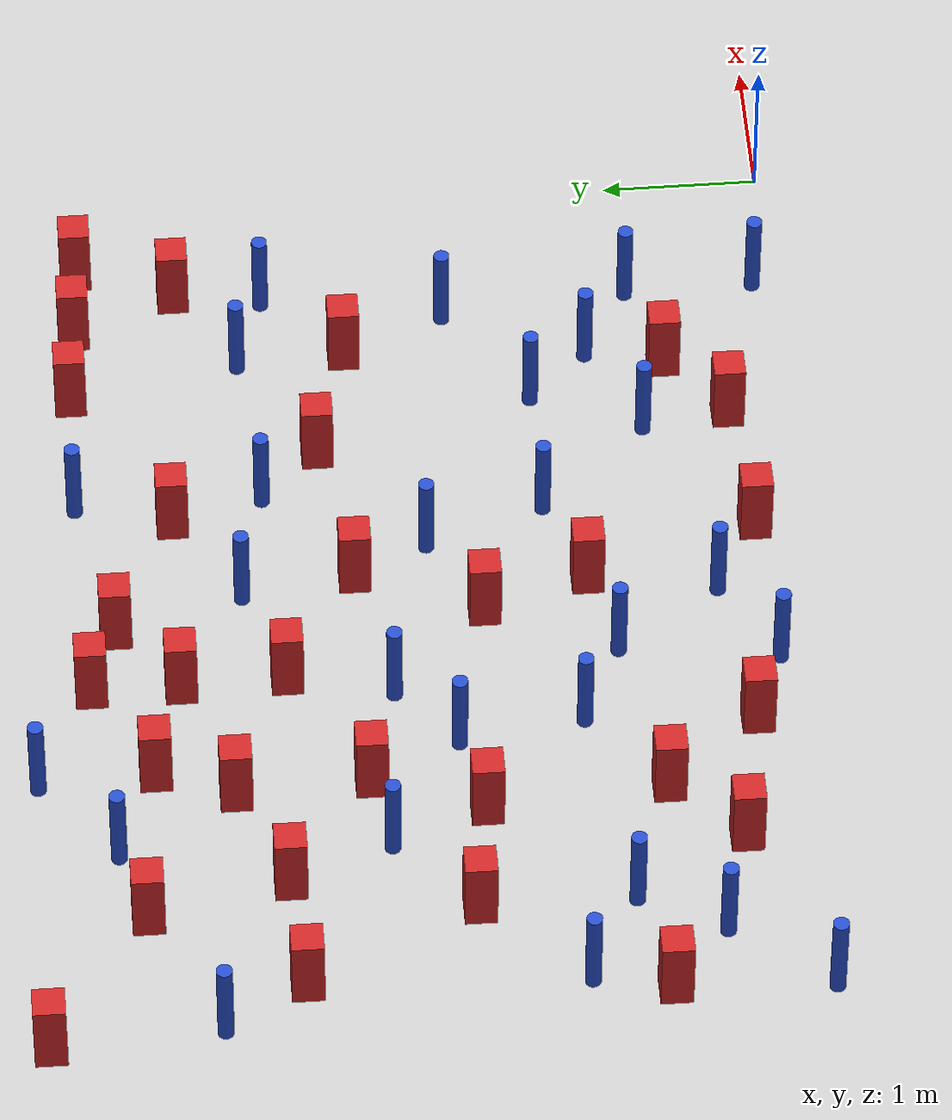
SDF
<sdf version="1.6">
 <world name="default">
  <model name="ground_plane">
   <static>1</static>
   <link name="link">
    <collision name="collision">
     <geometry><plane><normal>0 0 1</normal><size>100 100</size></plane></geometry>
     <surface><friction><ode><mu>100</mu><mu2>50</mu2></ode></friction></surface>
    </collision>
    <visual name="visual">
     <cast_shadows>0</cast_shadows>
     <geometry><plane><normal>0 0 1</normal><size>100 100</size></plane></geometry>
     <material>
      <ambient>1.0 1.0 1.0 1.0</ambient>
      <diffuse>0.8 0.8 0.8 1.0</diffuse>
      <specular>0.01 0.01 0.01 1.000000</specular>
     </material>
    </visual>
   </link>
  </model>
  <model name="square_post_obstacle7">
   <static>true</static>
   <pose>-2.0578482682 0.386483031477 8.22691968438e-08 7.2212513382e-06 -7.54495500217e-07 2.29674213826e-05</pose>
   <link name="link">
    <pose>0 0 0.25 0 -0 0</pose>
    <inertial>
     <mass>100</mass>
     <inertia>
      <ixx>0.166667</ixx>
      <ixy>0</ixy>
      <ixz>0</ixz>
      <iyy>0.166667</iyy>
      <iyz>0</iyz>
      <izz>0.166667</izz>
     </inertia>
    </inertial>
    <collision name="collision"><geometry><box><size>.2 .2 .5</size></box></geometry></collision>
    <visual name="visual">
     <geometry><box><size>.2 .2 .5</size></box></geometry>
     <material>
      <script><name>Gazebo/Red</name><uri>file://media/materials/scripts/gazebo.material</uri></script>
     </material>
    </visual>
   </link>
  </model>
  <model name="pole_obstacle6">
   <static>true</static>
   <pose>-2.58148058758 3.40972883455 2.88873142074e-08 -9.90536690232e-09 4.6021994898e-07 -1.20965994968e-07</pose>
   <link name="link">
    <pose>0 0 0.3 0 -0 0</pose>
    <inertial>
     <mass>1</mass>
     <inertia><ixx>0.145833</ixx><ixy>0</ixy><ixz>0</ixz><iyy>0.145833</iyy><iyz>0</iyz><izz>0.125</izz></inertia>
    </inertial>
    <collision name="collision">
     <geometry><cylinder><radius>0.05</radius><length>.6</length></cylinder></geometry>
    </collision>
    <visual name="visual">
     <geometry><cylinder><radius>0.05</radius><length>.6</length></cylinder></geometry>
     <material>
      <script><name>Gazebo/Blue</name><uri>file://media/materials/scripts/gazebo.material</uri></script>
     </material>
    </visual>
   </link>
  </model>
  <model name="pole_obstacle10">
   <static>true</static>
   <pose>-3.39466578167 3.58236068421 2.88873142074e-08 -9.90536690232e-09 4.6021994898e-07 -1.20965994968e-07</pose>
   <link name="link">
    <pose>0 0 0.3 0 -0 0</pose>
    <inertial>
     <mass>1</mass>
     <inertia><ixx>0.145833</ixx><ixy>0</ixy><ixz>0</ixz><iyy>0.145833</iyy><iyz>0</iyz><izz>0.125</izz></inertia>
    </inertial>
    <collision name="collision">
     <geometry><cylinder><radius>0.05</radius><length>.6</length></cylinder></geometry>
    </collision>
    <visual name="visual">
     <geometry><cylinder><radius>0.05</radius><length>.6</length></cylinder></geometry>
     <material>
      <script><name>Gazebo/Blue</name><uri>file://media/materials/scripts/gazebo.material</uri></script>
     </material>
    </visual>
   </link>
  </model>
  <model name="pole_obstacle12">
   <static>true</static>
   <pose>-0.875067047452 3.3181722902 2.88873142074e-08 -9.90536689636e-09 4.60219948994e-07 -1.20965994958e-07</pose>
   <link name="link">
    <pose>0 0 0.3 0 -0 0</pose>
    <inertial>
     <mass>1</mass>
     <inertia><ixx>0.145833</ixx><ixy>0</ixy><ixz>0</ixz><iyy>0.145833</iyy><iyz>0</iyz><izz>0.125</izz></inertia>
    </inertial>
    <collision name="collision">
     <geometry><cylinder><radius>0.05</radius><length>.6</length></cylinder></geometry>
    </collision>
    <visual name="visual">
     <geometry><cylinder><radius>0.05</radius><length>.6</length></cylinder></geometry>
     <material>
      <script><name>Gazebo/Blue</name><uri>file://media/materials/scripts/gazebo.material</uri></script>
     </material>
    </visual>
   </link>
  </model>
  <model name="pole_obstacle20">
   <static>true</static>
   <pose>-0.929298429132 0.112789689783 2.88873142074e-08 -9.90536689442e-09 4.60219948999e-07 -1.20965994955e-07</pose>
   <link name="link">
    <pose>0 0 0.3 0 -0 0</pose>
    <inertial>
     <mass>1</mass>
     <inertia><ixx>0.145833</ixx><ixy>0</ixy><ixz>0</ixz><iyy>0.145833</iyy><iyz>0</iyz><izz>0.125</izz></inertia>
    </inertial>
    <collision name="collision">
     <geometry><cylinder><radius>0.05</radius><length>.6</length></cylinder></geometry>
    </collision>
    <visual name="visual">
     <geometry><cylinder><radius>0.05</radius><length>.6</length></cylinder></geometry>
     <material>
      <script><name>Gazebo/Blue</name><uri>file://media/materials/scripts/gazebo.material</uri></script>
     </material>
    </visual>
   </link>
  </model>
  <model name="pole_obstacle30">
   <static>true</static>
   <pose>-0.952852756577 0.950909964537 2.88873142074e-08 -9.90536689928e-09 4.60219948987e-07 -1.20965994963e-07</pose>
   <link name="link">
    <pose>0 0 0.3 0 -0 0</pose>
    <inertial>
     <mass>1</mass>
     <inertia><ixx>0.145833</ixx><ixy>0</ixy><ixz>0</ixz><iyy>0.145833</iyy><iyz>0</iyz><izz>0.125</izz></inertia>
    </inertial>
    <collision name="collision">
     <geometry><cylinder><radius>0.05</radius><length>.6</length></cylinder></geometry>
    </collision>
    <visual name="visual">
     <geometry><cylinder><radius>0.05</radius><length>.6</length></cylinder></geometry>
     <material>
      <script><name>Gazebo/Blue</name><uri>file://media/materials/scripts/gazebo.material</uri></script>
     </material>
    </visual>
   </link>
  </model>
  <model name="square_post_obstacle35">
   <static>true</static>
   <pose>-2.22317574207 3.03623148469 8.22691968438e-08 7.2212513382e-06 -7.54495500217e-07 2.29674213826e-05</pose>
   <link name="link">
    <pose>0 0 0.25 0 -0 0</pose>
    <inertial>
     <mass>100</mass>
     <inertia>
      <ixx>0.166667</ixx>
      <ixy>0</ixy>
      <ixz>0</ixz>
      <iyy>0.166667</iyy>
      <iyz>0</iyz>
      <izz>0.166667</izz>
     </inertia>
    </inertial>
    <collision name="collision"><geometry><box><size>.2 .2 .5</size></box></geometry></collision>
    <visual name="visual">
     <geometry><box><size>.2 .2 .5</size></box></geometry>
     <material>
      <script><name>Gazebo/Red</name><uri>file://media/materials/scripts/gazebo.material</uri></script>
     </material>
    </visual>
   </link>
  </model>
  <model name="pole_obstacle37">
   <static>true</static>
   <pose>-1.4197018853 3.50148875004 2.88873142074e-08 -9.90536689791e-09 4.6021994899e-07 -1.20965994959e-07</pose>
   <link name="link">
    <pose>0 0 0.3 0 -0 0</pose>
    <inertial>
     <mass>1</mass>
     <inertia><ixx>0.145833</ixx><ixy>0</ixy><ixz>0</ixz><iyy>0.145833</iyy><iyz>0</iyz><izz>0.125</izz></inertia>
    </inertial>
    <collision name="collision">
     <geometry><cylinder><radius>0.05</radius><length>.6</length></cylinder></geometry>
    </collision>
    <visual name="visual">
     <geometry><cylinder><radius>0.05</radius><length>.6</length></cylinder></geometry>
     <material>
      <script><name>Gazebo/Blue</name><uri>file://media/materials/scripts/gazebo.material</uri></script>
     </material>
    </visual>
   </link>
  </model>
  <model name="pole_obstacle39">
   <static>true</static>
   <pose>-1.83347134275 1.63742403144 2.88873142074e-08 -9.90536689672e-09 4.60219948993e-07 -1.20965994959e-07</pose>
   <link name="link">
    <pose>0 0 0.3 0 -0 0</pose>
    <inertial>
     <mass>1</mass>
     <inertia><ixx>0.145833</ixx><ixy>0</ixy><ixz>0</ixz><iyy>0.145833</iyy><iyz>0</iyz><izz>0.125</izz></inertia>
    </inertial>
    <collision name="collision">
     <geometry><cylinder><radius>0.05</radius><length>.6</length></cylinder></geometry>
    </collision>
    <visual name="visual">
     <geometry><cylinder><radius>0.05</radius><length>.6</length></cylinder></geometry>
     <material>
      <script><name>Gazebo/Blue</name><uri>file://media/materials/scripts/gazebo.material</uri></script>
     </material>
    </visual>
   </link>
  </model>
  <model name="square_post_obstacle43">
   <static>true</static>
   <pose>-4.97031388749 2.87327310191 8.22691968438e-08 7.2212513382e-06 -7.54495500217e-07 2.29674213826e-05</pose>
   <link name="link">
    <pose>0 0 0.25 0 -0 0</pose>
    <inertial>
     <mass>100</mass>
     <inertia>
      <ixx>0.166667</ixx>
      <ixy>0</ixy>
      <ixz>0</ixz>
      <iyy>0.166667</iyy>
      <iyz>0</iyz>
      <izz>0.166667</izz>
     </inertia>
    </inertial>
    <collision name="collision"><geometry><box><size>.2 .2 .5</size></box></geometry></collision>
    <visual name="visual">
     <geometry><box><size>.2 .2 .5</size></box></geometry>
     <material>
      <script><name>Gazebo/Red</name><uri>file://media/materials/scripts/gazebo.material</uri></script>
     </material>
    </visual>
   </link>
  </model>
  <model name="square_post_obstacle46">
   <static>true</static>
   <pose>-6.71251366512 1.15470202201 8.22691968438e-08 7.2212513382e-06 -7.54495500217e-07 2.29674213826e-05</pose>
   <link name="link">
    <pose>0 0 0.25 0 -0 0</pose>
    <inertial>
     <mass>100</mass>
     <inertia>
      <ixx>0.166667</ixx>
      <ixy>0</ixy>
      <ixz>0</ixz>
      <iyy>0.166667</iyy>
      <iyz>0</iyz>
      <izz>0.166667</izz>
     </inertia>
    </inertial>
    <collision name="collision"><geometry><box><size>.2 .2 .5</size></box></geometry></collision>
    <visual name="visual">
     <geometry><box><size>.2 .2 .5</size></box></geometry>
     <material>
      <script><name>Gazebo/Red</name><uri>file://media/materials/scripts/gazebo.material</uri></script>
     </material>
    </visual>
   </link>
  </model>
  <model name="pole_obstacle46">
   <static>true</static>
   <pose>-1.47782105042 1.25648719803 2.88873142074e-08 -9.90536689672e-09 4.60219948993e-07 -1.20965994959e-07</pose>
   <link name="link">
    <pose>0 0 0.3 0 -0 0</pose>
    <inertial>
     <mass>1</mass>
     <inertia><ixx>0.145833</ixx><ixy>0</ixy><ixz>0</ixz><iyy>0.145833</iyy><iyz>0</iyz><izz>0.125</izz></inertia>
    </inertial>
    <collision name="collision">
     <geometry><cylinder><radius>0.05</radius><length>.6</length></cylinder></geometry>
    </collision>
    <visual name="visual">
     <geometry><cylinder><radius>0.05</radius><length>.6</length></cylinder></geometry>
     <material>
      <script><name>Gazebo/Blue</name><uri>file://media/materials/scripts/gazebo.material</uri></script>
     </material>
    </visual>
   </link>
  </model>
  <model name="pole_obstacle48">
   <static>true</static>
   <pose>-3.53754861752 0.59060038455 2.88873142074e-08 -9.90536690901e-09 4.60219948964e-07 -1.20965994979e-07</pose>
   <link name="link">
    <pose>0 0 0.3 0 -0 0</pose>
    <inertial>
     <mass>1</mass>
     <inertia><ixx>0.145833</ixx><ixy>0</ixy><ixz>0</ixz><iyy>0.145833</iyy><iyz>0</iyz><izz>0.125</izz></inertia>
    </inertial>
    <collision name="collision">
     <geometry><cylinder><radius>0.05</radius><length>.6</length></cylinder></geometry>
    </collision>
    <visual name="visual">
     <geometry><cylinder><radius>0.05</radius><length>.6</length></cylinder></geometry>
     <material>
      <script><name>Gazebo/Blue</name><uri>file://media/materials/scripts/gazebo.material</uri></script>
     </material>
    </visual>
   </link>
  </model>
  <model name="square_post_obstacle55">
   <static>true</static>
   <pose>-4.10396411846 3.34127734356 8.22691968438e-08 7.2212513382e-06 -7.54495500217e-07 2.29674213826e-05</pose>
   <link name="link">
    <pose>0 0 0.25 0 -0 0</pose>
    <inertial>
     <mass>100</mass>
     <inertia>
      <ixx>0.166667</ixx>
      <ixy>0</ixy>
      <ixz>0</ixz>
      <iyy>0.166667</iyy>
      <iyz>0</iyz>
      <izz>0.166667</izz>
     </inertia>
    </inertial>
    <collision name="collision"><geometry><box><size>.2 .2 .5</size></box></geometry></collision>
    <visual name="visual">
     <geometry><box><size>.2 .2 .5</size></box></geometry>
     <material>
      <script><name>Gazebo/Red</name><uri>file://media/materials/scripts/gazebo.material</uri></script>
     </material>
    </visual>
   </link>
  </model>
  <model name="square_post_obstacle58">
   <static>true</static>
   <pose>-4.63018900141 0.447439122466 8.22691968438e-08 7.2212513382e-06 -7.54495500217e-07 2.29674213826e-05</pose>
   <link name="link">
    <pose>0 0 0.25 0 -0 0</pose>
    <inertial>
     <mass>100</mass>
     <inertia>
      <ixx>0.166667</ixx>
      <ixy>0</ixy>
      <ixz>0</ixz>
      <iyy>0.166667</iyy>
      <iyz>0</iyz>
      <izz>0.166667</izz>
     </inertia>
    </inertial>
    <collision name="collision"><geometry><box><size>.2 .2 .5</size></box></geometry></collision>
    <visual name="visual">
     <geometry><box><size>.2 .2 .5</size></box></geometry>
     <material>
      <script><name>Gazebo/Red</name><uri>file://media/materials/scripts/gazebo.material</uri></script>
     </material>
    </visual>
   </link>
  </model>
  <model name="pole_obstacle56">
   <static>true</static>
   <pose>-6.60267755912 1.64459742651 2.88873142074e-08 -9.90536689445e-09 4.60219948999e-07 -1.20965994956e-07</pose>
   <link name="link">
    <pose>0 0 0.3 0 -0 0</pose>
    <inertial>
     <mass>1</mass>
     <inertia><ixx>0.145833</ixx><ixy>0</ixy><ixz>0</ixz><iyy>0.145833</iyy><iyz>0</iyz><izz>0.125</izz></inertia>
    </inertial>
    <collision name="collision">
     <geometry><cylinder><radius>0.05</radius><length>.6</length></cylinder></geometry>
    </collision>
    <visual name="visual">
     <geometry><cylinder><radius>0.05</radius><length>.6</length></cylinder></geometry>
     <material>
      <script><name>Gazebo/Blue</name><uri>file://media/materials/scripts/gazebo.material</uri></script>
     </material>
    </visual>
   </link>
  </model>
  <model name="square_post_obstacle71">
   <static>true</static>
   <pose>-1.08236676798 4.54150008236 8.22691968438e-08 7.2212513382e-06 -7.54495500217e-07 2.29674213826e-05</pose>
   <link name="link">
    <pose>0 0 0.25 0 -0 0</pose>
    <inertial>
     <mass>100</mass>
     <inertia>
      <ixx>0.166667</ixx>
      <ixy>0</ixy>
      <ixz>0</ixz>
      <iyy>0.166667</iyy>
      <iyz>0</iyz>
      <izz>0.166667</izz>
     </inertia>
    </inertial>
    <collision name="collision"><geometry><box><size>.2 .2 .5</size></box></geometry></collision>
    <visual name="visual">
     <geometry><box><size>.2 .2 .5</size></box></geometry>
     <material>
      <script><name>Gazebo/Red</name><uri>file://media/materials/scripts/gazebo.material</uri></script>
     </material>
    </visual>
   </link>
  </model>
  <model name="pole_obstacle69">
   <static>true</static>
   <pose>-1.08219067885 2.15362191911 2.88873142074e-08 -9.90536689791e-09 4.6021994899e-07 -1.20965994959e-07</pose>
   <link name="link">
    <pose>0 0 0.3 0 -0 0</pose>
    <inertial>
     <mass>1</mass>
     <inertia><ixx>0.145833</ixx><ixy>0</ixy><ixz>0</ixz><iyy>0.145833</iyy><iyz>0</iyz><izz>0.125</izz></inertia>
    </inertial>
    <collision name="collision">
     <geometry><cylinder><radius>0.05</radius><length>.6</length></cylinder></geometry>
    </collision>
    <visual name="visual">
     <geometry><cylinder><radius>0.05</radius><length>.6</length></cylinder></geometry>
     <material>
      <script><name>Gazebo/Blue</name><uri>file://media/materials/scripts/gazebo.material</uri></script>
     </material>
    </visual>
   </link>
  </model>
  <model name="pole_obstacle82">
   <static>true</static>
   <pose>-5.47869228682 2.7775672456 2.88873142074e-08 -9.90536690245e-09 4.6021994898e-07 -1.20965994966e-07</pose>
   <link name="link">
    <pose>0 0 0.3 0 -0 0</pose>
    <inertial>
     <mass>1</mass>
     <inertia><ixx>0.145833</ixx><ixy>0</ixy><ixz>0</ixz><iyy>0.145833</iyy><iyz>0</iyz><izz>0.125</izz></inertia>
    </inertial>
    <collision name="collision">
     <geometry><cylinder><radius>0.05</radius><length>.6</length></cylinder></geometry>
    </collision>
    <visual name="visual">
     <geometry><cylinder><radius>0.05</radius><length>.6</length></cylinder></geometry>
     <material>
      <script><name>Gazebo/Blue</name><uri>file://media/materials/scripts/gazebo.material</uri></script>
     </material>
    </visual>
   </link>
  </model>
  <model name="square_post_obstacle81">
   <static>true</static>
   <pose>-0.551517128975 4.50697306945 8.22691968438e-08 7.2212513382e-06 -7.54495500217e-07 2.29674213826e-05</pose>
   <link name="link">
    <pose>0 0 0.25 0 -0 0</pose>
    <inertial>
     <mass>100</mass>
     <inertia>
      <ixx>0.166667</ixx>
      <ixy>0</ixy>
      <ixz>0</ixz>
      <iyy>0.166667</iyy>
      <iyz>0</iyz>
      <izz>0.166667</izz>
     </inertia>
    </inertial>
    <collision name="collision"><geometry><box><size>.2 .2 .5</size></box></geometry></collision>
    <visual name="visual">
     <geometry><box><size>.2 .2 .5</size></box></geometry>
     <material>
      <script><name>Gazebo/Red</name><uri>file://media/materials/scripts/gazebo.material</uri></script>
     </material>
    </visual>
   </link>
  </model>
  <model name="square_post_obstacle82">
   <static>true</static>
   <pose>-4.12757718808 4.56307166168 8.22691968438e-08 7.2212513382e-06 -7.54495500217e-07 2.29674213826e-05</pose>
   <link name="link">
    <pose>0 0 0.25 0 -0 0</pose>
    <inertial>
     <mass>100</mass>
     <inertia>
      <ixx>0.166667</ixx>
      <ixy>0</ixy>
      <ixz>0</ixz>
      <iyy>0.166667</iyy>
      <iyz>0</iyz>
      <izz>0.166667</izz>
     </inertia>
    </inertial>
    <collision name="collision"><geometry><box><size>.2 .2 .5</size></box></geometry></collision>
    <visual name="visual">
     <geometry><box><size>.2 .2 .5</size></box></geometry>
     <material>
      <script><name>Gazebo/Red</name><uri>file://media/materials/scripts/gazebo.material</uri></script>
     </material>
    </visual>
   </link>
  </model>
  <model name="pole_obstacle91">
   <static>true</static>
   <pose>-2.58669329084 4.60081324647 2.88873142074e-08 -9.90536689859e-09 4.60219948989e-07 -1.20965994961e-07</pose>
   <link name="link">
    <pose>0 0 0.3 0 -0 0</pose>
    <inertial>
     <mass>1</mass>
     <inertia><ixx>0.145833</ixx><ixy>0</ixy><ixz>0</ixz><iyy>0.145833</iyy><iyz>0</iyz><izz>0.125</izz></inertia>
    </inertial>
    <collision name="collision">
     <geometry><cylinder><radius>0.05</radius><length>.6</length></cylinder></geometry>
    </collision>
    <visual name="visual">
     <geometry><cylinder><radius>0.05</radius><length>.6</length></cylinder></geometry>
     <material>
      <script><name>Gazebo/Blue</name><uri>file://media/materials/scripts/gazebo.material</uri></script>
     </material>
    </visual>
   </link>
  </model>
  <model name="square_post_obstacle83">
   <static>true</static>
   <pose>-4.13042620209 4.00386966066 8.22691968438e-08 7.22125133819e-06 -7.54495500217e-07 2.29674213826e-05</pose>
   <link name="link">
    <pose>0 0 0.25 0 -0 0</pose>
    <inertial>
     <mass>100</mass>
     <inertia>
      <ixx>0.166667</ixx>
      <ixy>0</ixy>
      <ixz>0</ixz>
      <iyy>0.166667</iyy>
      <iyz>0</iyz>
      <izz>0.166667</izz>
     </inertia>
    </inertial>
    <collision name="collision"><geometry><box><size>.2 .2 .5</size></box></geometry></collision>
    <visual name="visual">
     <geometry><box><size>.2 .2 .5</size></box></geometry>
     <material>
      <script><name>Gazebo/Red</name><uri>file://media/materials/scripts/gazebo.material</uri></script>
     </material>
    </visual>
   </link>
  </model>
  <model name="pole_obstacle115">
   <static>true</static>
   <pose>-6.74964749612 0.17641341693 2.88873142074e-08 -9.90536689378e-09 4.60219949e-07 -1.20965994955e-07</pose>
   <link name="link">
    <pose>0 0 0.3 0 -0 0</pose>
    <inertial>
     <mass>1</mass>
     <inertia><ixx>0.145833</ixx><ixy>0</ixy><ixz>0</ixz><iyy>0.145833</iyy><iyz>0</iyz><izz>0.125</izz></inertia>
    </inertial>
    <collision name="collision">
     <geometry><cylinder><radius>0.05</radius><length>.6</length></cylinder></geometry>
    </collision>
    <visual name="visual">
     <geometry><cylinder><radius>0.05</radius><length>.6</length></cylinder></geometry>
     <material>
      <script><name>Gazebo/Blue</name><uri>file://media/materials/scripts/gazebo.material</uri></script>
     </material>
    </visual>
   </link>
  </model>
  <model name="square_post_obstacle103">
   <static>true</static>
   <pose>-3.62353839141 2.07171269161 8.22691968438e-08 7.2212513382e-06 -7.54495500217e-07 2.29674213826e-05</pose>
   <link name="link">
    <pose>0 0 0.25 0 -0 0</pose>
    <inertial>
     <mass>100</mass>
     <inertia>
      <ixx>0.166667</ixx>
      <ixy>0</ixy>
      <ixz>0</ixz>
      <iyy>0.166667</iyy>
      <iyz>0</iyz>
      <izz>0.166667</izz>
     </inertia>
    </inertial>
    <collision name="collision"><geometry><box><size>.2 .2 .5</size></box></geometry></collision>
    <visual name="visual">
     <geometry><box><size>.2 .2 .5</size></box></geometry>
     <material>
      <script><name>Gazebo/Red</name><uri>file://media/materials/scripts/gazebo.material</uri></script>
     </material>
    </visual>
   </link>
  </model>
  <model name="pole_obstacle125">
   <static>true</static>
   <pose>-4.55420665424 1.51750264384 2.88873142074e-08 -9.90536689445e-09 4.60219948999e-07 -1.20965994956e-07</pose>
   <link name="link">
    <pose>0 0 0.3 0 -0 0</pose>
    <inertial>
     <mass>1</mass>
     <inertia><ixx>0.145833</ixx><ixy>0</ixy><ixz>0</ixz><iyy>0.145833</iyy><iyz>0</iyz><izz>0.125</izz></inertia>
    </inertial>
    <collision name="collision">
     <geometry><cylinder><radius>0.05</radius><length>.6</length></cylinder></geometry>
    </collision>
    <visual name="visual">
     <geometry><cylinder><radius>0.05</radius><length>.6</length></cylinder></geometry>
     <material>
      <script><name>Gazebo/Blue</name><uri>file://media/materials/scripts/gazebo.material</uri></script>
     </material>
    </visual>
   </link>
  </model>
  <model name="pole_obstacle127">
   <static>true</static>
   <pose>-5.99675259347 1.32020971987 2.88873142074e-08 -9.90536689445e-09 4.60219948999e-07 -1.20965994956e-07</pose>
   <link name="link">
    <pose>0 0 0.3 0 -0 0</pose>
    <inertial>
     <mass>1</mass>
     <inertia><ixx>0.145833</ixx><ixy>0</ixy><ixz>0</ixz><iyy>0.145833</iyy><iyz>0</iyz><izz>0.125</izz></inertia>
    </inertial>
    <collision name="collision">
     <geometry><cylinder><radius>0.05</radius><length>.6</length></cylinder></geometry>
    </collision>
    <visual name="visual">
     <geometry><cylinder><radius>0.05</radius><length>.6</length></cylinder></geometry>
     <material>
      <script><name>Gazebo/Blue</name><uri>file://media/materials/scripts/gazebo.material</uri></script>
     </material>
    </visual>
   </link>
  </model>
  <model name="pole_obstacle135">
   <static>true</static>
   <pose>-2.139324199 0.937717785604 2.88873142074e-08 -9.90536689285e-09 4.60219949002e-07 -1.20965994953e-07</pose>
   <link name="link">
    <pose>0 0 0.3 0 -0 0</pose>
    <inertial>
     <mass>1</mass>
     <inertia><ixx>0.145833</ixx><ixy>0</ixy><ixz>0</ixz><iyy>0.145833</iyy><iyz>0</iyz><izz>0.125</izz></inertia>
    </inertial>
    <collision name="collision">
     <geometry><cylinder><radius>0.05</radius><length>.6</length></cylinder></geometry>
    </collision>
    <visual name="visual">
     <geometry><cylinder><radius>0.05</radius><length>.6</length></cylinder></geometry>
     <material>
      <script><name>Gazebo/Blue</name><uri>file://media/materials/scripts/gazebo.material</uri></script>
     </material>
    </visual>
   </link>
  </model>
  <model name="square_post_obstacle118">
   <static>true</static>
   <pose>-6.53495683706 3.36778173474 8.22691968438e-08 7.2212513382e-06 -7.54495500217e-07 2.29674213826e-05</pose>
   <link name="link">
    <pose>0 0 0.25 0 -0 0</pose>
    <inertial>
     <mass>100</mass>
     <inertia>
      <ixx>0.166667</ixx>
      <ixy>0</ixy>
      <ixz>0</ixz>
      <iyy>0.166667</iyy>
      <iyz>0</iyz>
      <izz>0.166667</izz>
     </inertia>
    </inertial>
    <collision name="collision"><geometry><box><size>.2 .2 .5</size></box></geometry></collision>
    <visual name="visual">
     <geometry><box><size>.2 .2 .5</size></box></geometry>
     <material>
      <script><name>Gazebo/Red</name><uri>file://media/materials/scripts/gazebo.material</uri></script>
     </material>
    </visual>
   </link>
  </model>
  <model name="square_post_obstacle119">
   <static>true</static>
   <pose>-5.56512604372 0.60808296191 8.22691968438e-08 7.2212513382e-06 -7.54495500217e-07 2.29674213826e-05</pose>
   <link name="link">
    <pose>0 0 0.25 0 -0 0</pose>
    <inertial>
     <mass>100</mass>
     <inertia>
      <ixx>0.166667</ixx>
      <ixy>0</ixy>
      <ixz>0</ixz>
      <iyy>0.166667</iyy>
      <iyz>0</iyz>
      <izz>0.166667</izz>
     </inertia>
    </inertial>
    <collision name="collision"><geometry><box><size>.2 .2 .5</size></box></geometry></collision>
    <visual name="visual">
     <geometry><box><size>.2 .2 .5</size></box></geometry>
     <material>
      <script><name>Gazebo/Red</name><uri>file://media/materials/scripts/gazebo.material</uri></script>
     </material>
    </visual>
   </link>
  </model>
  <model name="pole_obstacle146">
   <static>true</static>
   <pose>-4.86095249835 4.92452763063 2.88873142074e-08 -9.90536690842e-09 4.60219948965e-07 -1.20965994976e-07</pose>
   <link name="link">
    <pose>0 0 0.3 0 -0 0</pose>
    <inertial>
     <mass>1</mass>
     <inertia><ixx>0.145833</ixx><ixy>0</ixy><ixz>0</ixz><iyy>0.145833</iyy><iyz>0</iyz><izz>0.125</izz></inertia>
    </inertial>
    <collision name="collision">
     <geometry><cylinder><radius>0.05</radius><length>.6</length></cylinder></geometry>
    </collision>
    <visual name="visual">
     <geometry><cylinder><radius>0.05</radius><length>.6</length></cylinder></geometry>
     <material>
      <script><name>Gazebo/Blue</name><uri>file://media/materials/scripts/gazebo.material</uri></script>
     </material>
    </visual>
   </link>
  </model>
  <model name="pole_obstacle148">
   <static>true</static>
   <pose>-3.9942106368 1.25779949558 2.88873142074e-08 -9.90536689951e-09 4.60219948987e-07 -1.20965994962e-07</pose>
   <link name="link">
    <pose>0 0 0.3 0 -0 0</pose>
    <inertial>
     <mass>1</mass>
     <inertia><ixx>0.145833</ixx><ixy>0</ixy><ixz>0</ixz><iyy>0.145833</iyy><iyz>0</iyz><izz>0.125</izz></inertia>
    </inertial>
    <collision name="collision">
     <geometry><cylinder><radius>0.05</radius><length>.6</length></cylinder></geometry>
    </collision>
    <visual name="visual">
     <geometry><cylinder><radius>0.05</radius><length>.6</length></cylinder></geometry>
     <material>
      <script><name>Gazebo/Blue</name><uri>file://media/materials/scripts/gazebo.material</uri></script>
     </material>
    </visual>
   </link>
  </model>
  <model name="square_post_obstacle149">
   <static>true</static>
   <pose>-5.13951356521 1.04692764455 8.22691968438e-08 7.2212513382e-06 -7.54495500217e-07 2.29674213826e-05</pose>
   <link name="link">
    <pose>0 0 0.25 0 -0 0</pose>
    <inertial>
     <mass>100</mass>
     <inertia>
      <ixx>0.166667</ixx>
      <ixy>0</ixy>
      <ixz>0</ixz>
      <iyy>0.166667</iyy>
      <iyz>0</iyz>
      <izz>0.166667</izz>
     </inertia>
    </inertial>
    <collision name="collision"><geometry><box><size>.2 .2 .5</size></box></geometry></collision>
    <visual name="visual">
     <geometry><box><size>.2 .2 .5</size></box></geometry>
     <material>
      <script><name>Gazebo/Red</name><uri>file://media/materials/scripts/gazebo.material</uri></script>
     </material>
    </visual>
   </link>
  </model>
  <model name="square_post_obstacle156">
   <static>true</static>
   <pose>-6.01085222083 2.28334470637 8.22691968438e-08 7.2212513382e-06 -7.54495500217e-07 2.29674213826e-05</pose>
   <link name="link">
    <pose>0 0 0.25 0 -0 0</pose>
    <inertial>
     <mass>100</mass>
     <inertia>
      <ixx>0.166667</ixx>
      <ixy>0</ixy>
      <ixz>0</ixz>
      <iyy>0.166667</iyy>
      <iyz>0</iyz>
      <izz>0.166667</izz>
     </inertia>
    </inertial>
    <collision name="collision"><geometry><box><size>.2 .2 .5</size></box></geometry></collision>
    <visual name="visual">
     <geometry><box><size>.2 .2 .5</size></box></geometry>
     <material>
      <script><name>Gazebo/Red</name><uri>file://media/materials/scripts/gazebo.material</uri></script>
     </material>
    </visual>
   </link>
  </model>
  <model name="pole_obstacle168">
   <static>true</static>
   <pose>-6.27657186528 0.792187801024 2.88873142074e-08 -9.90536689837e-09 4.60219948989e-07 -1.2096599496e-07</pose>
   <link name="link">
    <pose>0 0 0.3 0 -0 0</pose>
    <inertial>
     <mass>1</mass>
     <inertia><ixx>0.145833</ixx><ixy>0</ixy><ixz>0</ixz><iyy>0.145833</iyy><iyz>0</iyz><izz>0.125</izz></inertia>
    </inertial>
    <collision name="collision">
     <geometry><cylinder><radius>0.05</radius><length>.6</length></cylinder></geometry>
    </collision>
    <visual name="visual">
     <geometry><cylinder><radius>0.05</radius><length>.6</length></cylinder></geometry>
     <material>
      <script><name>Gazebo/Blue</name><uri>file://media/materials/scripts/gazebo.material</uri></script>
     </material>
    </visual>
   </link>
  </model>
  <model name="pole_obstacle170">
   <static>true</static>
   <pose>-4.25427311273 2.68139438771 2.88873142074e-08 -9.90536690245e-09 4.6021994898e-07 -1.20965994966e-07</pose>
   <link name="link">
    <pose>0 0 0.3 0 -0 0</pose>
    <inertial>
     <mass>1</mass>
     <inertia><ixx>0.145833</ixx><ixy>0</ixy><ixz>0</ixz><iyy>0.145833</iyy><iyz>0</iyz><izz>0.125</izz></inertia>
    </inertial>
    <collision name="collision">
     <geometry><cylinder><radius>0.05</radius><length>.6</length></cylinder></geometry>
    </collision>
    <visual name="visual">
     <geometry><cylinder><radius>0.05</radius><length>.6</length></cylinder></geometry>
     <material>
      <script><name>Gazebo/Blue</name><uri>file://media/materials/scripts/gazebo.material</uri></script>
     </material>
    </visual>
   </link>
  </model>
  <model name="pole_obstacle172">
   <static>true</static>
   <pose>-2.77508877988 1.63443925679 2.88873142074e-08 -9.90536689395e-09 4.60219949e-07 -1.20965994953e-07</pose>
   <link name="link">
    <pose>0 0 0.3 0 -0 0</pose>
    <inertial>
     <mass>1</mass>
     <inertia><ixx>0.145833</ixx><ixy>0</ixy><ixz>0</ixz><iyy>0.145833</iyy><iyz>0</iyz><izz>0.125</izz></inertia>
    </inertial>
    <collision name="collision">
     <geometry><cylinder><radius>0.05</radius><length>.6</length></cylinder></geometry>
    </collision>
    <visual name="visual">
     <geometry><cylinder><radius>0.05</radius><length>.6</length></cylinder></geometry>
     <material>
      <script><name>Gazebo/Blue</name><uri>file://media/materials/scripts/gazebo.material</uri></script>
     </material>
    </visual>
   </link>
  </model>
  <model name="square_post_obstacle164">
   <static>true</static>
   <pose>-4.8277810846 4.1973439841 8.22691968438e-08 7.22125133819e-06 -7.54495500217e-07 2.29674213826e-05</pose>
   <link name="link">
    <pose>0 0 0.25 0 -0 0</pose>
    <inertial>
     <mass>100</mass>
     <inertia>
      <ixx>0.166667</ixx>
      <ixy>0</ixy>
      <ixz>0</ixz>
      <iyy>0.166667</iyy>
      <iyz>0</iyz>
      <izz>0.166667</izz>
     </inertia>
    </inertial>
    <collision name="collision"><geometry><box><size>.2 .2 .5</size></box></geometry></collision>
    <visual name="visual">
     <geometry><box><size>.2 .2 .5</size></box></geometry>
     <material>
      <script><name>Gazebo/Red</name><uri>file://media/materials/scripts/gazebo.material</uri></script>
     </material>
    </visual>
   </link>
  </model>
  <model name="square_post_obstacle167">
   <static>true</static>
   <pose>-3.65241898093 4.3891990306 8.22691968438e-08 7.2212513382e-06 -7.54495500217e-07 2.29674213826e-05</pose>
   <link name="link">
    <pose>0 0 0.25 0 -0 0</pose>
    <inertial>
     <mass>100</mass>
     <inertia>
      <ixx>0.166667</ixx>
      <ixy>0</ixy>
      <ixz>0</ixz>
      <iyy>0.166667</iyy>
      <iyz>0</iyz>
      <izz>0.166667</izz>
     </inertia>
    </inertial>
    <collision name="collision"><geometry><box><size>.2 .2 .5</size></box></geometry></collision>
    <visual name="visual">
     <geometry><box><size>.2 .2 .5</size></box></geometry>
     <material>
      <script><name>Gazebo/Red</name><uri>file://media/materials/scripts/gazebo.material</uri></script>
     </material>
    </visual>
   </link>
  </model>
  <model name="pole_obstacle185">
   <static>true</static>
   <pose>-6.83583888064 3.8786256156 2.88873142074e-08 -9.90536690245e-09 4.6021994898e-07 -1.20965994966e-07</pose>
   <link name="link">
    <pose>0 0 0.3 0 -0 0</pose>
    <inertial>
     <mass>1</mass>
     <inertia><ixx>0.145833</ixx><ixy>0</ixy><ixz>0</ixz><iyy>0.145833</iyy><iyz>0</iyz><izz>0.125</izz></inertia>
    </inertial>
    <collision name="collision">
     <geometry><cylinder><radius>0.05</radius><length>.6</length></cylinder></geometry>
    </collision>
    <visual name="visual">
     <geometry><cylinder><radius>0.05</radius><length>.6</length></cylinder></geometry>
     <material>
      <script><name>Gazebo/Blue</name><uri>file://media/materials/scripts/gazebo.material</uri></script>
     </material>
    </visual>
   </link>
  </model>
  <model name="pole_obstacle187">
   <static>true</static>
   <pose>-3.04440662747 2.39547892983 2.88873142074e-08 -9.90536690232e-09 4.6021994898e-07 -1.20965994968e-07</pose>
   <link name="link">
    <pose>0 0 0.3 0 -0 0</pose>
    <inertial>
     <mass>1</mass>
     <inertia><ixx>0.145833</ixx><ixy>0</ixy><ixz>0</ixz><iyy>0.145833</iyy><iyz>0</iyz><izz>0.125</izz></inertia>
    </inertial>
    <collision name="collision">
     <geometry><cylinder><radius>0.05</radius><length>.6</length></cylinder></geometry>
    </collision>
    <visual name="visual">
     <geometry><cylinder><radius>0.05</radius><length>.6</length></cylinder></geometry>
     <material>
      <script><name>Gazebo/Blue</name><uri>file://media/materials/scripts/gazebo.material</uri></script>
     </material>
    </visual>
   </link>
  </model>
  <model name="square_post_obstacle178">
   <static>true</static>
   <pose>-3.02816674155 0.307857562715 8.22691968438e-08 7.2212513382e-06 -7.54495500217e-07 2.29674213826e-05</pose>
   <link name="link">
    <pose>0 0 0.25 0 -0 0</pose>
    <inertial>
     <mass>100</mass>
     <inertia>
      <ixx>0.166667</ixx>
      <ixy>0</ixy>
      <ixz>0</ixz>
      <iyy>0.166667</iyy>
      <iyz>0</iyz>
      <izz>0.166667</izz>
     </inertia>
    </inertial>
    <collision name="collision"><geometry><box><size>.2 .2 .5</size></box></geometry></collision>
    <visual name="visual">
     <geometry><box><size>.2 .2 .5</size></box></geometry>
     <material>
      <script><name>Gazebo/Red</name><uri>file://media/materials/scripts/gazebo.material</uri></script>
     </material>
    </visual>
   </link>
  </model>
  <model name="square_post_obstacle180">
   <static>true</static>
   <pose>-1.37961519706 2.81266851017 8.22691968438e-08 7.2212513382e-06 -7.54495500217e-07 2.29674213826e-05</pose>
   <link name="link">
    <pose>0 0 0.25 0 -0 0</pose>
    <inertial>
     <mass>100</mass>
     <inertia>
      <ixx>0.166667</ixx>
      <ixy>0</ixy>
      <ixz>0</ixz>
      <iyy>0.166667</iyy>
      <iyz>0</iyz>
      <izz>0.166667</izz>
     </inertia>
    </inertial>
    <collision name="collision"><geometry><box><size>.2 .2 .5</size></box></geometry></collision>
    <visual name="visual">
     <geometry><box><size>.2 .2 .5</size></box></geometry>
     <material>
      <script><name>Gazebo/Red</name><uri>file://media/materials/scripts/gazebo.material</uri></script>
     </material>
    </visual>
   </link>
  </model>
  <model name="square_post_obstacle183">
   <static>true</static>
   <pose>-3.29207382225 2.86652548401 8.22691968438e-08 7.2212513382e-06 -7.54495500217e-07 2.29674213826e-05</pose>
   <link name="link">
    <pose>0 0 0.25 0 -0 0</pose>
    <inertial>
     <mass>100</mass>
     <inertia>
      <ixx>0.166667</ixx>
      <ixy>0</ixy>
      <ixz>0</ixz>
      <iyy>0.166667</iyy>
      <iyz>0</iyz>
      <izz>0.166667</izz>
     </inertia>
    </inertial>
    <collision name="collision"><geometry><box><size>.2 .2 .5</size></box></geometry></collision>
    <visual name="visual">
     <geometry><box><size>.2 .2 .5</size></box></geometry>
     <material>
      <script><name>Gazebo/Red</name><uri>file://media/materials/scripts/gazebo.material</uri></script>
     </material>
    </visual>
   </link>
  </model>
  <model name="square_post_obstacle185">
   <static>true</static>
   <pose>-3.40609731824 1.40509552987 8.22691968438e-08 7.22125133819e-06 -7.54495500217e-07 2.29674213826e-05</pose>
   <link name="link">
    <pose>0 0 0.25 0 -0 0</pose>
    <inertial>
     <mass>100</mass>
     <inertia>
      <ixx>0.166667</ixx>
      <ixy>0</ixy>
      <ixz>0</ixz>
      <iyy>0.166667</iyy>
      <iyz>0</iyz>
      <izz>0.166667</izz>
     </inertia>
    </inertial>
    <collision name="collision"><geometry><box><size>.2 .2 .5</size></box></geometry></collision>
    <visual name="visual">
     <geometry><box><size>.2 .2 .5</size></box></geometry>
     <material>
      <script><name>Gazebo/Red</name><uri>file://media/materials/scripts/gazebo.material</uri></script>
     </material>
    </visual>
   </link>
  </model>
  <model name="square_post_obstacle186">
   <static>true</static>
   <pose>-5.95240573591 4.29891510424 8.22691968438e-08 7.22125133819e-06 -7.54495500217e-07 2.29674213826e-05</pose>
   <link name="link">
    <pose>0 0 0.25 0 -0 0</pose>
    <inertial>
     <mass>100</mass>
     <inertia>
      <ixx>0.166667</ixx>
      <ixy>0</ixy>
      <ixz>0</ixz>
      <iyy>0.166667</iyy>
      <iyz>0</iyz>
      <izz>0.166667</izz>
     </inertia>
    </inertial>
    <collision name="collision"><geometry><box><size>.2 .2 .5</size></box></geometry></collision>
    <visual name="visual">
     <geometry><box><size>.2 .2 .5</size></box></geometry>
     <material>
      <script><name>Gazebo/Red</name><uri>file://media/materials/scripts/gazebo.material</uri></script>
     </material>
    </visual>
   </link>
  </model>
  <model name="square_post_obstacle187">
   <static>true</static>
   <pose>-1.66096531705 4.58633178711 8.22691968438e-08 7.2212513382e-06 -7.54495500217e-07 2.29674213826e-05</pose>
   <link name="link">
    <pose>0 0 0.25 0 -0 0</pose>
    <inertial>
     <mass>100</mass>
     <inertia>
      <ixx>0.166667</ixx>
      <ixy>0</ixy>
      <ixz>0</ixz>
      <iyy>0.166667</iyy>
      <iyz>0</iyz>
      <izz>0.166667</izz>
     </inertia>
    </inertial>
    <collision name="collision"><geometry><box><size>.2 .2 .5</size></box></geometry></collision>
    <visual name="visual">
     <geometry><box><size>.2 .2 .5</size></box></geometry>
     <material>
      <script><name>Gazebo/Red</name><uri>file://media/materials/scripts/gazebo.material</uri></script>
     </material>
    </visual>
   </link>
  </model>
  <model name="square_post_obstacle192">
   <static>true</static>
   <pose>-5.24072734217 2.17997322238 8.22691968438e-08 7.2212513382e-06 -7.54495500217e-07 2.29674213826e-05</pose>
   <link name="link">
    <pose>0 0 0.25 0 -0 0</pose>
    <inertial>
     <mass>100</mass>
     <inertia>
      <ixx>0.166667</ixx>
      <ixy>0</ixy>
      <ixz>0</ixz>
      <iyy>0.166667</iyy>
      <iyz>0</iyz>
      <izz>0.166667</izz>
     </inertia>
    </inertial>
    <collision name="collision"><geometry><box><size>.2 .2 .5</size></box></geometry></collision>
    <visual name="visual">
     <geometry><box><size>.2 .2 .5</size></box></geometry>
     <material>
      <script><name>Gazebo/Red</name><uri>file://media/materials/scripts/gazebo.material</uri></script>
     </material>
    </visual>
   </link>
  </model>
  <model name="square_post_obstacle196">
   <static>true</static>
   <pose>-2.75578779693 3.98894727107 8.22691968438e-08 7.2212513382e-06 -7.54495500217e-07 2.29674213826e-05</pose>
   <link name="link">
    <pose>0 0 0.25 0 -0 0</pose>
    <inertial>
     <mass>100</mass>
     <inertia>
      <ixx>0.166667</ixx>
      <ixy>0</ixy>
      <ixz>0</ixz>
      <iyy>0.166667</iyy>
      <iyz>0</iyz>
      <izz>0.166667</izz>
     </inertia>
    </inertial>
    <collision name="collision"><geometry><box><size>.2 .2 .5</size></box></geometry></collision>
    <visual name="visual">
     <geometry><box><size>.2 .2 .5</size></box></geometry>
     <material>
      <script><name>Gazebo/Red</name><uri>file://media/materials/scripts/gazebo.material</uri></script>
     </material>
    </visual>
   </link>
  </model>
  <model name="square_post_obstacle197">
   <static>true</static>
   <pose>-1.58776832486 0.759795772808 8.22691968438e-08 7.2212513382e-06 -7.54495500217e-07 2.29674213826e-05</pose>
   <link name="link">
    <pose>0 0 0.25 0 -0 0</pose>
    <inertial>
     <mass>100</mass>
     <inertia>
      <ixx>0.166667</ixx>
      <ixy>0</ixy>
      <ixz>0</ixz>
      <iyy>0.166667</iyy>
      <iyz>0</iyz>
      <izz>0.166667</izz>
     </inertia>
    </inertial>
    <collision name="collision"><geometry><box><size>.2 .2 .5</size></box></geometry></collision>
    <visual name="visual">
     <geometry><box><size>.2 .2 .5</size></box></geometry>
     <material>
      <script><name>Gazebo/Red</name><uri>file://media/materials/scripts/gazebo.material</uri></script>
     </material>
    </visual>
   </link>
  </model>
  <model name="square_post_obstacle198">
   <static>true</static>
   <pose>-5.74400724864 3.4202882553 8.22691968438e-08 7.2212513382e-06 -7.54495500217e-07 2.29674213826e-05</pose>
   <link name="link">
    <pose>0 0 0.25 0 -0 0</pose>
    <inertial>
     <mass>100</mass>
     <inertia>
      <ixx>0.166667</ixx>
      <ixy>0</ixy>
      <ixz>0</ixz>
      <iyy>0.166667</iyy>
      <iyz>0</iyz>
      <izz>0.166667</izz>
     </inertia>
    </inertial>
    <collision name="collision"><geometry><box><size>.2 .2 .5</size></box></geometry></collision>
    <visual name="visual">
     <geometry><box><size>.2 .2 .5</size></box></geometry>
     <material>
      <script><name>Gazebo/Red</name><uri>file://media/materials/scripts/gazebo.material</uri></script>
     </material>
    </visual>
   </link>
  </model>
  <model name="square_post_obstacle199">
   <static>true</static>
   <pose>-5.02170883904 3.71224880031 8.22691968438e-08 7.2212513382e-06 -7.54495500217e-07 2.29674213826e-05</pose>
   <link name="link">
    <pose>0 0 0.25 0 -0 0</pose>
    <inertial>
     <mass>100</mass>
     <inertia>
      <ixx>0.166667</ixx>
      <ixy>0</ixy>
      <ixz>0</ixz>
      <iyy>0.166667</iyy>
      <iyz>0</iyz>
      <izz>0.166667</izz>
     </inertia>
    </inertial>
    <collision name="collision"><geometry><box><size>.2 .2 .5</size></box></geometry></collision>
    <visual name="visual">
     <geometry><box><size>.2 .2 .5</size></box></geometry>
     <material>
      <script><name>Gazebo/Red</name><uri>file://media/materials/scripts/gazebo.material</uri></script>
     </material>
    </visual>
   </link>
  </model>
  <model name="pole_obstacle196">
   <static>true</static>
   <pose>-5.44184725921 4.452615527 2.88873142074e-08 -9.90536690842e-09 4.60219948965e-07 -1.20965994976e-07</pose>
   <link name="link">
    <pose>0 0 0.3 0 -0 0</pose>
    <inertial>
     <mass>1</mass>
     <inertia><ixx>0.145833</ixx><ixy>0</ixy><ixz>0</ixz><iyy>0.145833</iyy><iyz>0</iyz><izz>0.125</izz></inertia>
    </inertial>
    <collision name="collision">
     <geometry><cylinder><radius>0.05</radius><length>.6</length></cylinder></geometry>
    </collision>
    <visual name="visual">
     <geometry><cylinder><radius>0.05</radius><length>.6</length></cylinder></geometry>
     <material>
      <script><name>Gazebo/Blue</name><uri>file://media/materials/scripts/gazebo.material</uri></script>
     </material>
    </visual>
   </link>
  </model>
  <model name="square_post_obstacle204">
   <static>true</static>
   <pose>-0.799764808503 3.88572369987 8.22691968438e-08 7.2212513382e-06 -7.54495500217e-07 2.29674213826e-05</pose>
   <link name="link">
    <pose>0 0 0.25 0 -0 0</pose>
    <inertial>
     <mass>100</mass>
     <inertia>
      <ixx>0.166667</ixx>
      <ixy>0</ixy>
      <ixz>0</ixz>
      <iyy>0.166667</iyy>
      <iyz>0</iyz>
      <izz>0.166667</izz>
     </inertia>
    </inertial>
    <collision name="collision"><geometry><box><size>.2 .2 .5</size></box></geometry></collision>
    <visual name="visual">
     <geometry><box><size>.2 .2 .5</size></box></geometry>
     <material>
      <script><name>Gazebo/Red</name><uri>file://media/materials/scripts/gazebo.material</uri></script>
     </material>
    </visual>
   </link>
  </model>
  <model name="square_post_obstacle211">
   <static>true</static>
   <pose>-6.91322532025 4.93250964326 8.22691968438e-08 7.2212513382e-06 -7.54495500217e-07 2.29674213826e-05</pose>
   <link name="link">
    <pose>0 0 0.25 0 -0 0</pose>
    <inertial>
     <mass>100</mass>
     <inertia>
      <ixx>0.166667</ixx>
      <ixy>0</ixy>
      <ixz>0</ixz>
      <iyy>0.166667</iyy>
      <iyz>0</iyz>
      <izz>0.166667</izz>
     </inertia>
    </inertial>
    <collision name="collision"><geometry><box><size>.2 .2 .5</size></box></geometry></collision>
    <visual name="visual">
     <geometry><box><size>.2 .2 .5</size></box></geometry>
     <material>
      <script><name>Gazebo/Red</name><uri>file://media/materials/scripts/gazebo.material</uri></script>
     </material>
    </visual>
   </link>
  </model>
  <model name="pole_obstacle202">
   <static>true</static>
   <pose>-4.12103999087 0.251936020412 2.88873142074e-08 -9.90536689713e-09 4.60219948992e-07 -1.20965994959e-07</pose>
   <link name="link">
    <pose>0 0 0.3 0 -0 0</pose>
    <inertial>
     <mass>1</mass>
     <inertia><ixx>0.145833</ixx><ixy>0</ixy><ixz>0</ixz><iyy>0.145833</iyy><iyz>0</iyz><izz>0.125</izz></inertia>
    </inertial>
    <collision name="collision">
     <geometry><cylinder><radius>0.05</radius><length>.6</length></cylinder></geometry>
    </collision>
    <visual name="visual">
     <geometry><cylinder><radius>0.05</radius><length>.6</length></cylinder></geometry>
     <material>
      <script><name>Gazebo/Blue</name><uri>file://media/materials/scripts/gazebo.material</uri></script>
     </material>
    </visual>
   </link>
  </model>
  <model name="pole_obstacle209">
   <static>true</static>
   <pose>-4.68028999087 2.30666002041 2.88873142074e-08 -9.90536690245e-09 4.6021994898e-07 -1.20965994966e-07</pose>
   <link name="link">
    <pose>0 0 0.3 0 -0 0</pose>
    <inertial>
     <mass>1</mass>
     <inertia><ixx>0.145833</ixx><ixy>0</ixy><ixz>0</ixz><iyy>0.145833</iyy><iyz>0</iyz><izz>0.125</izz></inertia>
    </inertial>
    <collision name="collision">
     <geometry><cylinder><radius>0.05</radius><length>.6</length></cylinder></geometry>
    </collision>
    <visual name="visual">
     <geometry><cylinder><radius>0.05</radius><length>.6</length></cylinder></geometry>
     <material>
      <script><name>Gazebo/Blue</name><uri>file://media/materials/scripts/gazebo.material</uri></script>
     </material>
    </visual>
   </link>
  </model>
 </world>
</sdf>
